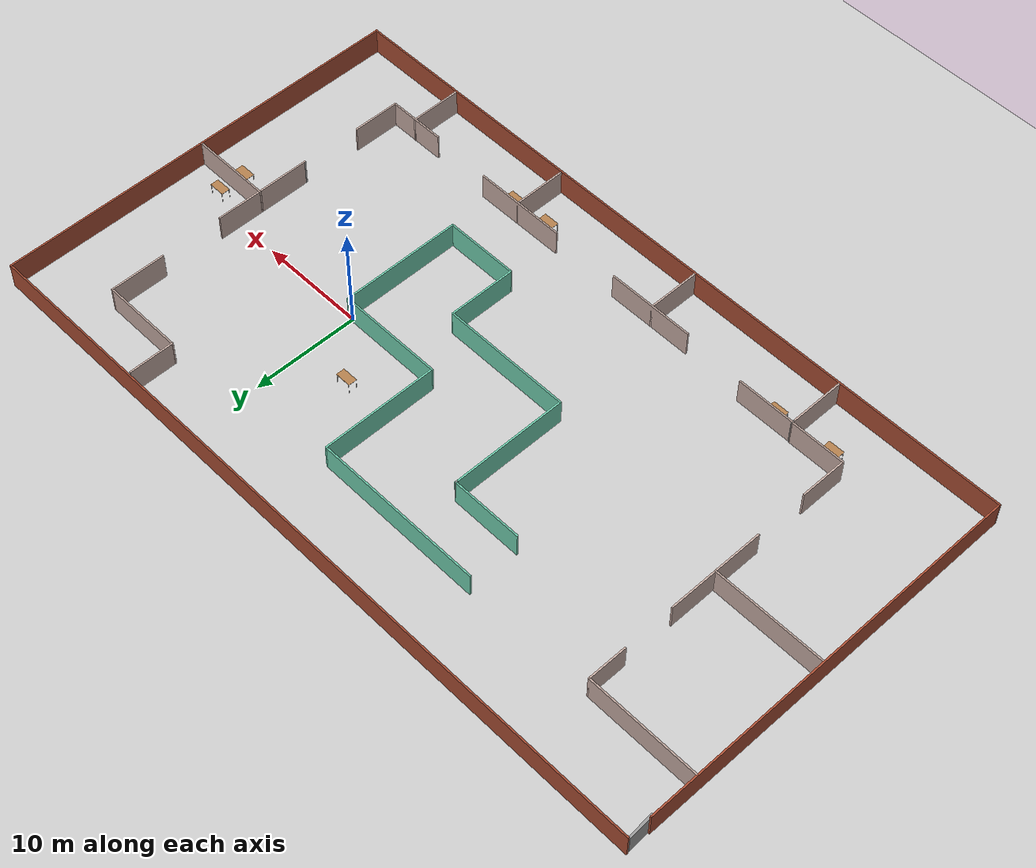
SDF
<sdf version="1.6">
 <world name="default">
  <model name="ground_plane">
   <static>1</static>
   <link name="link">
    <collision name="collision">
     <geometry><plane><normal>0 0 1</normal><size>100 100</size></plane></geometry>
     <surface><friction><ode><mu>100</mu><mu2>50</mu2></ode></friction></surface>
    </collision>
    <visual name="visual">
     <cast_shadows>0</cast_shadows>
     <geometry><plane><normal>0 0 1</normal><size>100 100</size></plane></geometry>
     <material>
      <script><uri>file://media/materials/scripts/gazebo.material</uri><name>Gazebo/Grey</name></script>
     </material>
    </visual>
   </link>
  </model>
  <light name="sun" type="directional">
   <pose>0 0 10 0 -0 0</pose>
   <diffuse>0.8 0.8 0.8 1</diffuse>
   <specular>0.2 0.2 0.2 1</specular>
   <attenuation>
    <range>1000</range>
    <constant>0.9</constant>
    <linear>0.01</linear>
    <quadratic>0.001</quadratic>
   </attenuation>
   <direction>-0.5 0.1 -0.9</direction>
  </light>
  <gravity>0 0 -9.8</gravity>
  <magnetic_field>6e-06 2.3e-05 -4.2e-05</magnetic_field>
  <atmosphere type="adiabatic"/>
  <physics name="default_physics" default="0" type="ode">
   <max_step_size>0.001</max_step_size>
   <real_time_factor>1</real_time_factor>
   <real_time_update_rate>1000</real_time_update_rate>
  </physics>
  <scene><ambient>0.4 0.4 0.4 1</ambient><background>0.7 0.7 0.7 1</background><shadows>1</shadows></scene>
  <spherical_coordinates>
   <surface_model>EARTH_WGS84</surface_model>
   <latitude_deg>0</latitude_deg>
   <longitude_deg>0</longitude_deg>
   <elevation>0</elevation>
   <heading_deg>0</heading_deg>
  </spherical_coordinates>
  <model name="maze_world">
   <pose>-13.1562 -2.2026 0 0 -0 0</pose>
   <link name="Door_0">
    <collision name="Door_0_Collision">
     <geometry><box><size>2.4882 0.2 2</size></box></geometry>
     <pose>0 0 1 0 -0 0</pose>
    </collision>
    <visual name="Door_0_Visual">
     <pose>0 0 1 0 -0 0</pose>
     <geometry><box><size>2.4882 0.2 2</size></box></geometry>
     <material>
      <script><uri>file://media/materials/scripts/gazebo.material</uri><name>Gazebo/Grey</name></script>
     </material>
    </visual>
    <pose>-34.5337 18.2528 0 0 -0 1.62796</pose>
   </link>
   <link name="Wall_0">
    <collision name="Wall_0_Collision">
     <geometry><box><size>69.5 0.15 2.5</size></box></geometry>
     <pose>0 0 1.25 0 -0 0</pose>
    </collision>
    <visual name="Wall_0_Visual">
     <pose>0 0 1.25 0 -0 0</pose>
     <geometry><box><size>69.5 0.15 2.5</size></box></geometry>
     <material>
      <script><uri>file://media/materials/scripts/gazebo.material</uri><name>Gazebo/Bricks</name></script>
      <ambient>1 1 1 1</ambient>
     </material>
     <meta><layer>0</layer></meta>
    </visual>
    <pose>-0.012461 19.6883 0 0 -0 0</pose>
   </link>
   <link name="Wall_1">
    <collision name="Wall_1_Collision">
     <geometry><box><size>39.5 0.15 2.5</size></box></geometry>
     <pose>0 0 1.25 0 -0 0</pose>
    </collision>
    <visual name="Wall_1_Visual">
     <pose>0 0 1.25 0 -0 0</pose>
     <geometry><box><size>39.5 0.15 2.5</size></box></geometry>
     <material>
      <script><uri>file://media/materials/scripts/gazebo.material</uri><name>Gazebo/Bricks</name></script>
      <ambient>1 1 1 1</ambient>
     </material>
     <meta><layer>0</layer></meta>
    </visual>
    <pose>34.6625 0.013279 0 0 0 -1.5708</pose>
   </link>
   <link name="Wall_10">
    <collision name="Wall_10_Collision">
     <geometry><box><size>10.5 0.15 2.5</size></box></geometry>
     <pose>0 0 1.25 0 -0 0</pose>
    </collision>
    <visual name="Wall_10_Visual">
     <pose>0 0 1.25 0 -0 0</pose>
     <geometry><box><size>10.5 0.15 2.5</size></box></geometry>
     <material>
      <script><uri>file://media/materials/scripts/gazebo.material</uri><name>Gazebo/Grey</name></script>
      <ambient>0.760784 0.662745 0.627451 1</ambient>
     </material>
     <meta><layer>0</layer></meta>
    </visual>
    <pose>-29.3673 -0.085359 0 0 -0 3.14159</pose>
   </link>
   <link name="Wall_12">
    <collision name="Wall_12_Collision">
     <geometry><box><size>4.5 0.15 2.5</size></box></geometry>
     <pose>0 0 1.25 0 -0 0</pose>
    </collision>
    <visual name="Wall_12_Visual">
     <pose>0 0 1.25 0 -0 0</pose>
     <geometry><box><size>4.5 0.15 2.5</size></box></geometry>
     <material>
      <script><uri>file://media/materials/scripts/gazebo.material</uri><name>Gazebo/Grey</name></script>
      <ambient>0.760784 0.662745 0.627451 1</ambient>
     </material>
     <meta><layer>0</layer></meta>
    </visual>
    <pose>-24.0987 -11.9923 0 0 0 -1.5708</pose>
   </link>
   <link name="Wall_13">
    <collision name="Wall_13_Collision">
     <geometry><box><size>5.25 0.15 2.5</size></box></geometry>
     <pose>0 0 1.25 0 -0 0</pose>
    </collision>
    <visual name="Wall_13_Visual">
     <pose>0 0 1.25 0 -0 0</pose>
     <geometry><box><size>5.25 0.15 2.5</size></box></geometry>
     <material>
      <script><uri>file://media/materials/scripts/gazebo.material</uri><name>Gazebo/Grey</name></script>
      <ambient>0.760784 0.662745 0.627451 1</ambient>
     </material>
     <meta><layer>0</layer></meta>
    </visual>
    <pose>-21.5487 -14.1673 0 0 -0 0</pose>
   </link>
   <link name="Wall_14">
    <collision name="Wall_14_Collision">
     <geometry><box><size>5.5 0.15 2.5</size></box></geometry>
     <pose>0 0 1.25 0 -0 0</pose>
    </collision>
    <visual name="Wall_14_Visual">
     <pose>0 0 1.25 0 -0 0</pose>
     <geometry><box><size>5.5 0.15 2.5</size></box></geometry>
     <material>
      <script><uri>file://media/materials/scripts/gazebo.material</uri><name>Gazebo/Grey</name></script>
      <ambient>0.760784 0.662745 0.627451 1</ambient>
     </material>
     <meta><layer>0</layer></meta>
    </visual>
    <pose>-18.9987 -16.8423 0 0 0 -1.5708</pose>
   </link>
   <link name="Wall_16">
    <collision name="Wall_16_Collision">
     <geometry><box><size>0.302581 0.15 2.5</size></box></geometry>
     <pose>0 0 1.25 0 -0 0</pose>
    </collision>
    <visual name="Wall_16_Visual">
     <pose>0 0 1.25 0 -0 0</pose>
     <geometry><box><size>0.302581 0.15 2.5</size></box></geometry>
     <material>
      <script><uri>file://media/materials/scripts/gazebo.material</uri><name>Gazebo/Grey</name></script>
      <ambient>1 1 1 1</ambient>
     </material>
     <meta><layer>0</layer></meta>
    </visual>
    <pose>-18.9704 -14.2381 0 0 0 -1.19012</pose>
   </link>
   <link name="Wall_17">
    <collision name="Wall_17_Collision">
     <geometry><box><size>5.5 0.15 2.5</size></box></geometry>
     <pose>0 0 1.25 0 -0 0</pose>
    </collision>
    <visual name="Wall_17_Visual">
     <pose>0 0 1.25 0 -0 0</pose>
     <geometry><box><size>5.5 0.15 2.5</size></box></geometry>
     <material>
      <script><uri>file://media/materials/scripts/gazebo.material</uri><name>Gazebo/Grey</name></script>
      <ambient>0.760784 0.662745 0.627451 1</ambient>
     </material>
     <meta><layer>0</layer></meta>
    </visual>
    <pose>-16.267 -14.2154 0 0 -0 0</pose>
   </link>
   <link name="Wall_19">
    <collision name="Wall_19_Collision">
     <geometry><box><size>8.25 0.15 2.5</size></box></geometry>
     <pose>0 0 1.25 0 -0 0</pose>
    </collision>
    <visual name="Wall_19_Visual">
     <pose>0 0 1.25 0 -0 0</pose>
     <geometry><box><size>8.25 0.15 2.5</size></box></geometry>
     <material>
      <script><uri>file://media/materials/scripts/gazebo.material</uri><name>Gazebo/Grey</name></script>
      <ambient>0.760784 0.662745 0.627451 1</ambient>
     </material>
     <meta><layer>0</layer></meta>
    </visual>
    <pose>-3.48573 -14.6832 0 0 -0 0</pose>
   </link>
   <link name="Wall_2">
    <collision name="Wall_2_Collision">
     <geometry><box><size>69.5 0.15 2.5</size></box></geometry>
     <pose>0 0 1.25 0 -0 0</pose>
    </collision>
    <visual name="Wall_2_Visual">
     <pose>0 0 1.25 0 -0 0</pose>
     <geometry><box><size>69.5 0.15 2.5</size></box></geometry>
     <material>
      <script><uri>file://media/materials/scripts/gazebo.material</uri><name>Gazebo/Bricks</name></script>
      <ambient>1 1 1 1</ambient>
     </material>
     <meta><layer>0</layer></meta>
    </visual>
    <pose>-0.012461 -19.6617 0 0 -0 3.14159</pose>
   </link>
   <link name="Wall_21">
    <collision name="Wall_21_Collision">
     <geometry><box><size>5 0.15 2.5</size></box></geometry>
     <pose>0 0 1.25 0 -0 0</pose>
    </collision>
    <visual name="Wall_21_Visual">
     <pose>0 0 1.25 0 -0 0</pose>
     <geometry><box><size>5 0.15 2.5</size></box></geometry>
     <material>
      <script><uri>file://media/materials/scripts/gazebo.material</uri><name>Gazebo/Grey</name></script>
      <ambient>0.760784 0.662745 0.627451 1</ambient>
     </material>
     <meta><layer>0</layer></meta>
    </visual>
    <pose>-3.69911 -17.1082 0 0 0 -1.5708</pose>
   </link>
   <link name="Wall_23">
    <collision name="Wall_23_Collision">
     <geometry><box><size>8.75 0.15 2.5</size></box></geometry>
     <pose>0 0 1.25 0 -0 0</pose>
    </collision>
    <visual name="Wall_23_Visual">
     <pose>0 0 1.25 0 -0 0</pose>
     <geometry><box><size>8.75 0.15 2.5</size></box></geometry>
     <material>
      <script><uri>file://media/materials/scripts/gazebo.material</uri><name>Gazebo/Grey</name></script>
      <ambient>0.760784 0.662745 0.627451 1</ambient>
     </material>
     <meta><layer>0</layer></meta>
    </visual>
    <pose>11.3622 -14.5897 0 0 -0 0</pose>
   </link>
   <link name="Wall_25">
    <collision name="Wall_25_Collision">
     <geometry><box><size>5 0.15 2.5</size></box></geometry>
     <pose>0 0 1.25 0 -0 0</pose>
    </collision>
    <visual name="Wall_25_Visual">
     <pose>0 0 1.25 0 -0 0</pose>
     <geometry><box><size>5 0.15 2.5</size></box></geometry>
     <material>
      <script><uri>file://media/materials/scripts/gazebo.material</uri><name>Gazebo/Grey</name></script>
      <ambient>0.760784 0.662745 0.627451 1</ambient>
     </material>
     <meta><layer>0</layer></meta>
    </visual>
    <pose>11.5538 -17.0147 0 0 0 -1.5708</pose>
   </link>
   <link name="Wall_27">
    <collision name="Wall_27_Collision">
     <geometry><box><size>5.5 0.15 2.5</size></box></geometry>
     <pose>0 0 1.25 0 -0 0</pose>
    </collision>
    <visual name="Wall_27_Visual">
     <pose>0 0 1.25 0 -0 0</pose>
     <geometry><box><size>5.5 0.15 2.5</size></box></geometry>
     <material>
      <script><uri>file://media/materials/scripts/gazebo.material</uri><name>Gazebo/Grey</name></script>
      <ambient>0.760784 0.662745 0.627451 1</ambient>
     </material>
     <meta><layer>0</layer></meta>
    </visual>
    <pose>24.2415 -14.8704 0 0 -0 0</pose>
   </link>
   <link name="Wall_28">
    <collision name="Wall_28_Collision">
     <geometry><box><size>4.5 0.15 2.5</size></box></geometry>
     <pose>0 0 1.25 0 -0 0</pose>
    </collision>
    <visual name="Wall_28_Visual">
     <pose>0 0 1.25 0 -0 0</pose>
     <geometry><box><size>4.5 0.15 2.5</size></box></geometry>
     <material>
      <script><uri>file://media/materials/scripts/gazebo.material</uri><name>Gazebo/Grey</name></script>
      <ambient>0.760784 0.662745 0.627451 1</ambient>
     </material>
     <meta><layer>0</layer></meta>
    </visual>
    <pose>26.9165 -12.6954 0 0 -0 1.5708</pose>
   </link>
   <link name="Wall_3">
    <collision name="Wall_3_Collision">
     <geometry><box><size>37.25 0.15 2.5</size></box></geometry>
     <pose>0 0 1.25 0 -0 0</pose>
    </collision>
    <visual name="Wall_3_Visual">
     <pose>0 0 1.25 0 -0 0</pose>
     <geometry><box><size>37.25 0.15 2.5</size></box></geometry>
     <material>
      <script><uri>file://media/materials/scripts/gazebo.material</uri><name>Gazebo/Bricks</name></script>
      <ambient>1 1 1 1</ambient>
     </material>
     <meta><layer>0</layer></meta>
    </visual>
    <pose>-34.6875 -1.11172 0 0 -0 1.5708</pose>
   </link>
   <link name="Wall_30">
    <collision name="Wall_30_Collision">
     <geometry><box><size>5 0.15 2.5</size></box></geometry>
     <pose>0 0 1.25 0 -0 0</pose>
    </collision>
    <visual name="Wall_30_Visual">
     <pose>0 0 1.25 0 -0 0</pose>
     <geometry><box><size>5 0.15 2.5</size></box></geometry>
     <material>
      <script><uri>file://media/materials/scripts/gazebo.material</uri><name>Gazebo/Grey</name></script>
      <ambient>0.760784 0.662745 0.627451 1</ambient>
     </material>
     <meta><layer>0</layer></meta>
    </visual>
    <pose>24.3738 -17.2633 0 0 0 -1.5708</pose>
   </link>
   <link name="Wall_32">
    <collision name="Wall_32_Collision">
     <geometry><box><size>0.16 0.15 2.5</size></box></geometry>
     <pose>0 0 1.25 0 -0 0</pose>
    </collision>
    <visual name="Wall_32_Visual">
     <pose>0 0 1.25 0 -0 0</pose>
     <geometry><box><size>0.16 0.15 2.5</size></box></geometry>
     <material>
      <script><uri>file://media/materials/scripts/gazebo.material</uri><name>Gazebo/Grey</name></script>
      <ambient>1 1 1 1</ambient>
     </material>
     <meta><layer>0</layer></meta>
    </visual>
    <pose>27.0925 -4.85775 0 0 -0 0</pose>
   </link>
   <link name="Wall_33">
    <collision name="Wall_33_Collision">
     <geometry><box><size>9.25 0.15 2.5</size></box></geometry>
     <pose>0 0 1.25 0 -0 0</pose>
    </collision>
    <visual name="Wall_33_Visual">
     <pose>0 0 1.25 0 -0 0</pose>
     <geometry><box><size>9.25 0.15 2.5</size></box></geometry>
     <material>
      <script><uri>file://media/materials/scripts/gazebo.material</uri><name>Gazebo/Grey</name></script>
      <ambient>0.760784 0.662745 0.627451 1</ambient>
     </material>
     <meta><layer>0</layer></meta>
    </visual>
    <pose>27.0975 -0.307745 0 0 -0 1.5708</pose>
   </link>
   <link name="Wall_35">
    <collision name="Wall_35_Collision">
     <geometry><box><size>7.75 0.15 2.5</size></box></geometry>
     <pose>0 0 1.25 0 -0 0</pose>
    </collision>
    <visual name="Wall_35_Visual">
     <pose>0 0 1.25 0 -0 0</pose>
     <geometry><box><size>7.75 0.15 2.5</size></box></geometry>
     <material>
      <script><uri>file://media/materials/scripts/gazebo.material</uri><name>Gazebo/Grey</name></script>
      <ambient>0.760784 0.662745 0.627451 1</ambient>
     </material>
     <meta><layer>0</layer></meta>
    </visual>
    <pose>30.8875 0.008218 0 0 -0 0</pose>
   </link>
   <link name="Wall_37">
    <collision name="Wall_37_Collision">
     <geometry><box><size>5.25 0.15 2.5</size></box></geometry>
     <pose>0 0 1.25 0 -0 0</pose>
    </collision>
    <visual name="Wall_37_Visual">
     <pose>0 0 1.25 0 -0 0</pose>
     <geometry><box><size>5.25 0.15 2.5</size></box></geometry>
     <material>
      <script><uri>file://media/materials/scripts/gazebo.material</uri><name>Gazebo/Grey</name></script>
      <ambient>0.760784 0.662745 0.627451 1</ambient>
     </material>
     <meta><layer>0</layer></meta>
    </visual>
    <pose>27.0875 12.758 0 0 -0 1.5708</pose>
   </link>
   <link name="Wall_38">
    <collision name="Wall_38_Collision">
     <geometry><box><size>7.75 0.15 2.5</size></box></geometry>
     <pose>0 0 1.25 0 -0 0</pose>
    </collision>
    <visual name="Wall_38_Visual">
     <pose>0 0 1.25 0 -0 0</pose>
     <geometry><box><size>7.75 0.15 2.5</size></box></geometry>
     <material>
      <script><uri>file://media/materials/scripts/gazebo.material</uri><name>Gazebo/Grey</name></script>
      <ambient>0.760784 0.662745 0.627451 1</ambient>
     </material>
     <meta><layer>0</layer></meta>
    </visual>
    <pose>23.2875 15.308 0 0 -0 3.14159</pose>
   </link>
   <link name="Wall_39">
    <collision name="Wall_39_Collision">
     <geometry><box><size>4.25 0.15 2.5</size></box></geometry>
     <pose>0 0 1.25 0 -0 0</pose>
    </collision>
    <visual name="Wall_39_Visual">
     <pose>0 0 1.25 0 -0 0</pose>
     <geometry><box><size>4.25 0.15 2.5</size></box></geometry>
     <material>
      <script><uri>file://media/materials/scripts/gazebo.material</uri><name>Gazebo/Grey</name></script>
      <ambient>0.760784 0.662745 0.627451 1</ambient>
     </material>
     <meta><layer>0</layer></meta>
    </visual>
    <pose>19.4875 17.358 0 0 -0 1.5708</pose>
   </link>
   <link name="Wall_41">
    <collision name="Wall_41_Collision">
     <geometry><box><size>11 0.15 2.5</size></box></geometry>
     <pose>0 0 1.25 0 -0 0</pose>
    </collision>
    <visual name="Wall_41_Visual">
     <pose>0 0 1.25 0 -0 0</pose>
     <geometry><box><size>11 0.15 2.5</size></box></geometry>
     <material>
      <script><uri>file://media/materials/scripts/gazebo.material</uri><name>Gazebo/Grey</name></script>
      <ambient>0.435294 0.796078 0.67451 1</ambient>
     </material>
     <meta><layer>0</layer></meta>
    </visual>
    <pose>-5.47706 2.72435 0 0 0 -1.5708</pose>
   </link>
   <link name="Wall_42">
    <collision name="Wall_42_Collision">
     <geometry><box><size>12.25 0.15 2.5</size></box></geometry>
     <pose>0 0 1.25 0 -0 0</pose>
    </collision>
    <visual name="Wall_42_Visual">
     <pose>0 0 1.25 0 -0 0</pose>
     <geometry><box><size>12.25 0.15 2.5</size></box></geometry>
     <material>
      <script><uri>file://media/materials/scripts/gazebo.material</uri><name>Gazebo/Grey</name></script>
      <ambient>0.435294 0.796078 0.67451 1</ambient>
     </material>
     <meta><layer>0</layer></meta>
    </visual>
    <pose>0.572942 -2.70065 0 0 -0 0</pose>
   </link>
   <link name="Wall_43">
    <collision name="Wall_43_Collision">
     <geometry><box><size>6.5 0.15 2.5</size></box></geometry>
     <pose>0 0 1.25 0 -0 0</pose>
    </collision>
    <visual name="Wall_43_Visual">
     <pose>0 0 1.25 0 -0 0</pose>
     <geometry><box><size>6.5 0.15 2.5</size></box></geometry>
     <material>
      <script><uri>file://media/materials/scripts/gazebo.material</uri><name>Gazebo/Grey</name></script>
      <ambient>0.435294 0.796078 0.67451 1</ambient>
     </material>
     <meta><layer>0</layer></meta>
    </visual>
    <pose>6.62294 -5.87565 0 0 0 -1.5708</pose>
   </link>
   <link name="Wall_44">
    <collision name="Wall_44_Collision">
     <geometry><box><size>7 0.15 2.5</size></box></geometry>
     <pose>0 0 1.25 0 -0 0</pose>
    </collision>
    <visual name="Wall_44_Visual">
     <pose>0 0 1.25 0 -0 0</pose>
     <geometry><box><size>7 0.15 2.5</size></box></geometry>
     <material>
      <script><uri>file://media/materials/scripts/gazebo.material</uri><name>Gazebo/Grey</name></script>
      <ambient>0.435294 0.796078 0.67451 1</ambient>
     </material>
     <meta><layer>0</layer></meta>
    </visual>
    <pose>10.0479 -9.05065 0 0 -0 0</pose>
   </link>
   <link name="Wall_45">
    <collision name="Wall_45_Collision">
     <geometry><box><size>11.5 0.15 2.5</size></box></geometry>
     <pose>0 0 1.25 0 -0 0</pose>
    </collision>
    <visual name="Wall_45_Visual">
     <pose>0 0 1.25 0 -0 0</pose>
     <geometry><box><size>11.5 0.15 2.5</size></box></geometry>
     <material>
      <script><uri>file://media/materials/scripts/gazebo.material</uri><name>Gazebo/Grey</name></script>
      <ambient>0.435294 0.796078 0.67451 1</ambient>
     </material>
     <meta><layer>0</layer></meta>
    </visual>
    <pose>13.4729 -3.37565 0 0 -0 1.5708</pose>
   </link>
   <link name="Wall_46">
    <collision name="Wall_46_Collision">
     <geometry><box><size>10 0.15 2.5</size></box></geometry>
     <pose>0 0 1.25 0 -0 0</pose>
    </collision>
    <visual name="Wall_46_Visual">
     <pose>0 0 1.25 0 -0 0</pose>
     <geometry><box><size>10 0.15 2.5</size></box></geometry>
     <material>
      <script><uri>file://media/materials/scripts/gazebo.material</uri><name>Gazebo/Grey</name></script>
      <ambient>0.435294 0.796078 0.67451 1</ambient>
     </material>
     <meta><layer>0</layer></meta>
    </visual>
    <pose>8.54794 2.29935 0 0 -0 3.14159</pose>
   </link>
   <link name="Wall_47">
    <collision name="Wall_47_Collision">
     <geometry><box><size>11 0.15 2.5</size></box></geometry>
     <pose>0 0 1.25 0 -0 0</pose>
    </collision>
    <visual name="Wall_47_Visual">
     <pose>0 0 1.25 0 -0 0</pose>
     <geometry><box><size>11 0.15 2.5</size></box></geometry>
     <material>
      <script><uri>file://media/materials/scripts/gazebo.material</uri><name>Gazebo/Grey</name></script>
      <ambient>0.435294 0.796078 0.67451 1</ambient>
     </material>
     <meta><layer>0</layer></meta>
    </visual>
    <pose>3.62294 7.72435 0 0 -0 1.5708</pose>
   </link>
   <link name="Wall_48">
    <collision name="Wall_48_Collision">
     <geometry><box><size>16 0.15 2.5</size></box></geometry>
     <pose>0 0 1.25 0 -0 0</pose>
    </collision>
    <visual name="Wall_48_Visual">
     <pose>0 0 1.25 0 -0 0</pose>
     <geometry><box><size>16 0.15 2.5</size></box></geometry>
     <material>
      <script><uri>file://media/materials/scripts/gazebo.material</uri><name>Gazebo/Grey</name></script>
      <ambient>0.435294 0.796078 0.67451 1</ambient>
     </material>
     <meta><layer>0</layer></meta>
    </visual>
    <pose>-4.30206 13.1493 0 0 -0 3.14159</pose>
   </link>
   <link name="Wall_5">
    <collision name="Wall_5_Collision">
     <geometry><box><size>10.5 0.15 2.5</size></box></geometry>
     <pose>0 0 1.25 0 -0 0</pose>
    </collision>
    <visual name="Wall_5_Visual">
     <pose>0 0 1.25 0 -0 0</pose>
     <geometry><box><size>10.5 0.15 2.5</size></box></geometry>
     <material>
      <script><uri>file://media/materials/scripts/gazebo.material</uri><name>Gazebo/Grey</name></script>
      <ambient>0.760784 0.662745 0.627451 1</ambient>
     </material>
     <meta><layer>0</layer></meta>
    </visual>
    <pose>-29.4043 12.9217 0 0 -0 0</pose>
   </link>
   <link name="Wall_50">
    <collision name="Wall_50_Collision">
     <geometry><box><size>0.244109 0.15 2.5</size></box></geometry>
     <pose>0 0 1.25 0 -0 0</pose>
    </collision>
    <visual name="Wall_50_Visual">
     <pose>0 0 1.25 0 -0 0</pose>
     <geometry><box><size>0.244109 0.15 2.5</size></box></geometry>
     <material>
      <script><uri>file://media/materials/scripts/gazebo.material</uri><name>Gazebo/Grey</name></script>
      <ambient>1 1 1 1</ambient>
     </material>
     <meta><layer>0</layer></meta>
    </visual>
    <pose>-5.47206 8.19614 0 0 -0 1.46434</pose>
   </link>
   <link name="Wall_51">
    <collision name="Wall_51_Collision">
     <geometry><box><size>6.75 0.15 2.5</size></box></geometry>
     <pose>0 0 1.25 0 -0 0</pose>
    </collision>
    <visual name="Wall_51_Visual">
     <pose>0 0 1.25 0 -0 0</pose>
     <geometry><box><size>6.75 0.15 2.5</size></box></geometry>
     <material>
      <script><uri>file://media/materials/scripts/gazebo.material</uri><name>Gazebo/Grey</name></script>
      <ambient>0.435294 0.796078 0.67451 1</ambient>
     </material>
     <meta><layer>0</layer></meta>
    </visual>
    <pose>-8.76706 8.24292 0 0 -0 3.14159</pose>
   </link>
   <link name="Wall_6">
    <collision name="Wall_6_Collision">
     <geometry><box><size>3.75 0.15 2.5</size></box></geometry>
     <pose>0 0 1.25 0 -0 0</pose>
    </collision>
    <visual name="Wall_6_Visual">
     <pose>0 0 1.25 0 -0 0</pose>
     <geometry><box><size>3.75 0.15 2.5</size></box></geometry>
     <material>
      <script><uri>file://media/materials/scripts/gazebo.material</uri><name>Gazebo/Grey</name></script>
      <ambient>0.760784 0.662745 0.627451 1</ambient>
     </material>
     <meta><layer>0</layer></meta>
    </visual>
    <pose>-24.2293 11.1217 0 0 0 -1.5708</pose>
   </link>
   <link name="Wall_8">
    <collision name="Wall_8_Collision">
     <geometry><box><size>9.25 0.15 2.5</size></box></geometry>
     <pose>0 0 1.25 0 -0 0</pose>
    </collision>
    <visual name="Wall_8_Visual">
     <pose>0 0 1.25 0 -0 0</pose>
     <geometry><box><size>9.25 0.15 2.5</size></box></geometry>
     <material>
      <script><uri>file://media/materials/scripts/gazebo.material</uri><name>Gazebo/Grey</name></script>
      <ambient>0.760784 0.662745 0.627451 1</ambient>
     </material>
     <meta><layer>0</layer></meta>
    </visual>
    <pose>-24.1923 -0.143701 0 0 0 -1.5708</pose>
   </link>
   <static>1</static>
  </model>
  <model name="table">
   <static>1</static>
   <link name="link">
    <collision name="surface">
     <pose>0 0 1 0 -0 0</pose>
     <geometry><box><size>1.5 0.8 0.03</size></box></geometry>
     <surface><friction><ode><mu>0.6</mu><mu2>0.6</mu2></ode></friction></surface>
    </collision>
    <visual name="visual1">
     <pose>0 0 1 0 -0 0</pose>
     <geometry><box><size>1.5 0.8 0.03</size></box></geometry>
     <material>
      <script><uri>file://media/materials/scripts/gazebo.material</uri><name>Gazebo/Wood</name></script>
     </material>
    </visual>
    <collision name="front_left_leg">
     <pose>0.68 0.38 0.5 0 -0 0</pose>
     <geometry><cylinder><radius>0.02</radius><length>1</length></cylinder></geometry>
    </collision>
    <visual name="front_left_leg">
     <pose>0.68 0.38 0.5 0 -0 0</pose>
     <geometry><cylinder><radius>0.02</radius><length>1</length></cylinder></geometry>
     <material>
      <script><uri>file://media/materials/scripts/gazebo.material</uri><name>Gazebo/Grey</name></script>
     </material>
    </visual>
    <collision name="front_right_leg">
     <pose>0.68 -0.38 0.5 0 -0 0</pose>
     <geometry><cylinder><radius>0.02</radius><length>1</length></cylinder></geometry>
    </collision>
    <visual name="front_right_leg">
     <pose>0.68 -0.38 0.5 0 -0 0</pose>
     <geometry><cylinder><radius>0.02</radius><length>1</length></cylinder></geometry>
     <material>
      <script><uri>file://media/materials/scripts/gazebo.material</uri><name>Gazebo/Grey</name></script>
     </material>
    </visual>
    <collision name="back_right_leg">
     <pose>-0.68 -0.38 0.5 0 -0 0</pose>
     <geometry><cylinder><radius>0.02</radius><length>1</length></cylinder></geometry>
    </collision>
    <visual name="back_right_leg">
     <pose>-0.68 -0.38 0.5 0 -0 0</pose>
     <geometry><cylinder><radius>0.02</radius><length>1</length></cylinder></geometry>
     <material>
      <script><uri>file://media/materials/scripts/gazebo.material</uri><name>Gazebo/Grey</name></script>
     </material>
    </visual>
    <collision name="back_left_leg">
     <pose>-0.68 0.38 0.5 0 -0 0</pose>
     <geometry><cylinder><radius>0.02</radius><length>1</length></cylinder></geometry>
    </collision>
    <visual name="back_left_leg">
     <pose>-0.68 0.38 0.5 0 -0 0</pose>
     <geometry><cylinder><radius>0.02</radius><length>1</length></cylinder></geometry>
     <material>
      <script><uri>file://media/materials/scripts/gazebo.material</uri><name>Gazebo/Grey</name></script>
     </material>
    </visual>
   </link>
   <pose>-35.4239 -17.6499 0 0 -0 0</pose>
  </model>
  <model name="table_0">
   <static>1</static>
   <link name="link">
    <collision name="surface">
     <pose>0 0 1 0 -0 0</pose>
     <geometry><box><size>1.5 0.8 0.03</size></box></geometry>
     <surface><friction><ode><mu>0.6</mu><mu2>0.6</mu2></ode></friction></surface>
    </collision>
    <visual name="visual1">
     <pose>0 0 1 0 -0 0</pose>
     <geometry><box><size>1.5 0.8 0.03</size></box></geometry>
     <material>
      <script><uri>file://media/materials/scripts/gazebo.material</uri><name>Gazebo/Wood</name></script>
     </material>
    </visual>
    <collision name="front_left_leg">
     <pose>0.68 0.38 0.5 0 -0 0</pose>
     <geometry><cylinder><radius>0.02</radius><length>1</length></cylinder></geometry>
    </collision>
    <visual name="front_left_leg">
     <pose>0.68 0.38 0.5 0 -0 0</pose>
     <geometry><cylinder><radius>0.02</radius><length>1</length></cylinder></geometry>
     <material>
      <script><uri>file://media/materials/scripts/gazebo.material</uri><name>Gazebo/Grey</name></script>
     </material>
    </visual>
    <collision name="front_right_leg">
     <pose>0.68 -0.38 0.5 0 -0 0</pose>
     <geometry><cylinder><radius>0.02</radius><length>1</length></cylinder></geometry>
    </collision>
    <visual name="front_right_leg">
     <pose>0.68 -0.38 0.5 0 -0 0</pose>
     <geometry><cylinder><radius>0.02</radius><length>1</length></cylinder></geometry>
     <material>
      <script><uri>file://media/materials/scripts/gazebo.material</uri><name>Gazebo/Grey</name></script>
     </material>
    </visual>
    <collision name="back_right_leg">
     <pose>-0.68 -0.38 0.5 0 -0 0</pose>
     <geometry><cylinder><radius>0.02</radius><length>1</length></cylinder></geometry>
    </collision>
    <visual name="back_right_leg">
     <pose>-0.68 -0.38 0.5 0 -0 0</pose>
     <geometry><cylinder><radius>0.02</radius><length>1</length></cylinder></geometry>
     <material>
      <script><uri>file://media/materials/scripts/gazebo.material</uri><name>Gazebo/Grey</name></script>
     </material>
    </visual>
    <collision name="back_left_leg">
     <pose>-0.68 0.38 0.5 0 -0 0</pose>
     <geometry><cylinder><radius>0.02</radius><length>1</length></cylinder></geometry>
    </collision>
    <visual name="back_left_leg">
     <pose>-0.68 0.38 0.5 0 -0 0</pose>
     <geometry><cylinder><radius>0.02</radius><length>1</length></cylinder></geometry>
     <material>
      <script><uri>file://media/materials/scripts/gazebo.material</uri><name>Gazebo/Grey</name></script>
     </material>
    </visual>
   </link>
   <pose>-0.141904 -17.9425 0 0 -0 0</pose>
  </model>
  <model name="table_1">
   <static>1</static>
   <link name="link">
    <collision name="surface">
     <pose>0 0 1 0 -0 0</pose>
     <geometry><box><size>1.5 0.8 0.03</size></box></geometry>
     <surface><friction><ode><mu>0.6</mu><mu2>0.6</mu2></ode></friction></surface>
    </collision>
    <visual name="visual1">
     <pose>0 0 1 0 -0 0</pose>
     <geometry><box><size>1.5 0.8 0.03</size></box></geometry>
     <material>
      <script><uri>file://media/materials/scripts/gazebo.material</uri><name>Gazebo/Wood</name></script>
     </material>
    </visual>
    <collision name="front_left_leg">
     <pose>0.68 0.38 0.5 0 -0 0</pose>
     <geometry><cylinder><radius>0.02</radius><length>1</length></cylinder></geometry>
    </collision>
    <visual name="front_left_leg">
     <pose>0.68 0.38 0.5 0 -0 0</pose>
     <geometry><cylinder><radius>0.02</radius><length>1</length></cylinder></geometry>
     <material>
      <script><uri>file://media/materials/scripts/gazebo.material</uri><name>Gazebo/Grey</name></script>
     </material>
    </visual>
    <collision name="front_right_leg">
     <pose>0.68 -0.38 0.5 0 -0 0</pose>
     <geometry><cylinder><radius>0.02</radius><length>1</length></cylinder></geometry>
    </collision>
    <visual name="front_right_leg">
     <pose>0.68 -0.38 0.5 0 -0 0</pose>
     <geometry><cylinder><radius>0.02</radius><length>1</length></cylinder></geometry>
     <material>
      <script><uri>file://media/materials/scripts/gazebo.material</uri><name>Gazebo/Grey</name></script>
     </material>
    </visual>
    <collision name="back_right_leg">
     <pose>-0.68 -0.38 0.5 0 -0 0</pose>
     <geometry><cylinder><radius>0.02</radius><length>1</length></cylinder></geometry>
    </collision>
    <visual name="back_right_leg">
     <pose>-0.68 -0.38 0.5 0 -0 0</pose>
     <geometry><cylinder><radius>0.02</radius><length>1</length></cylinder></geometry>
     <material>
      <script><uri>file://media/materials/scripts/gazebo.material</uri><name>Gazebo/Grey</name></script>
     </material>
    </visual>
    <collision name="back_left_leg">
     <pose>-0.68 0.38 0.5 0 -0 0</pose>
     <geometry><cylinder><radius>0.02</radius><length>1</length></cylinder></geometry>
    </collision>
    <visual name="back_left_leg">
     <pose>-0.68 0.38 0.5 0 -0 0</pose>
     <geometry><cylinder><radius>0.02</radius><length>1</length></cylinder></geometry>
     <material>
      <script><uri>file://media/materials/scripts/gazebo.material</uri><name>Gazebo/Grey</name></script>
     </material>
    </visual>
   </link>
   <pose>-3.8552 -18.122 0 0 -0 0</pose>
  </model>
  <model name="table_2">
   <static>1</static>
   <link name="link">
    <collision name="surface">
     <pose>0 0 1 0 -0 0</pose>
     <geometry><box><size>1.5 0.8 0.03</size></box></geometry>
     <surface><friction><ode><mu>0.6</mu><mu2>0.6</mu2></ode></friction></surface>
    </collision>
    <visual name="visual1">
     <pose>0 0 1 0 -0 0</pose>
     <geometry><box><size>1.5 0.8 0.03</size></box></geometry>
     <material>
      <script><uri>file://media/materials/scripts/gazebo.material</uri><name>Gazebo/Wood</name></script>
     </material>
    </visual>
    <collision name="front_left_leg">
     <pose>0.68 0.38 0.5 0 -0 0</pose>
     <geometry><cylinder><radius>0.02</radius><length>1</length></cylinder></geometry>
    </collision>
    <visual name="front_left_leg">
     <pose>0.68 0.38 0.5 0 -0 0</pose>
     <geometry><cylinder><radius>0.02</radius><length>1</length></cylinder></geometry>
     <material>
      <script><uri>file://media/materials/scripts/gazebo.material</uri><name>Gazebo/Grey</name></script>
     </material>
    </visual>
    <collision name="front_right_leg">
     <pose>0.68 -0.38 0.5 0 -0 0</pose>
     <geometry><cylinder><radius>0.02</radius><length>1</length></cylinder></geometry>
    </collision>
    <visual name="front_right_leg">
     <pose>0.68 -0.38 0.5 0 -0 0</pose>
     <geometry><cylinder><radius>0.02</radius><length>1</length></cylinder></geometry>
     <material>
      <script><uri>file://media/materials/scripts/gazebo.material</uri><name>Gazebo/Grey</name></script>
     </material>
    </visual>
    <collision name="back_right_leg">
     <pose>-0.68 -0.38 0.5 0 -0 0</pose>
     <geometry><cylinder><radius>0.02</radius><length>1</length></cylinder></geometry>
    </collision>
    <visual name="back_right_leg">
     <pose>-0.68 -0.38 0.5 0 -0 0</pose>
     <geometry><cylinder><radius>0.02</radius><length>1</length></cylinder></geometry>
     <material>
      <script><uri>file://media/materials/scripts/gazebo.material</uri><name>Gazebo/Grey</name></script>
     </material>
    </visual>
    <collision name="back_left_leg">
     <pose>-0.68 0.38 0.5 0 -0 0</pose>
     <geometry><cylinder><radius>0.02</radius><length>1</length></cylinder></geometry>
    </collision>
    <visual name="back_left_leg">
     <pose>-0.68 0.38 0.5 0 -0 0</pose>
     <geometry><cylinder><radius>0.02</radius><length>1</length></cylinder></geometry>
     <material>
      <script><uri>file://media/materials/scripts/gazebo.material</uri><name>Gazebo/Grey</name></script>
     </material>
    </visual>
   </link>
   <pose>-29.9703 -17.4002 0 0 -0 0</pose>
  </model>
  <model name="table_3">
   <static>1</static>
   <link name="link">
    <collision name="surface">
     <pose>0 0 1 0 -0 0</pose>
     <geometry><box><size>1.5 0.8 0.03</size></box></geometry>
     <surface><friction><ode><mu>0.6</mu><mu2>0.6</mu2></ode></friction></surface>
    </collision>
    <visual name="visual1">
     <pose>0 0 1 0 -0 0</pose>
     <geometry><box><size>1.5 0.8 0.03</size></box></geometry>
     <material>
      <script><uri>file://media/materials/scripts/gazebo.material</uri><name>Gazebo/Wood</name></script>
     </material>
    </visual>
    <collision name="front_left_leg">
     <pose>0.68 0.38 0.5 0 -0 0</pose>
     <geometry><cylinder><radius>0.02</radius><length>1</length></cylinder></geometry>
    </collision>
    <visual name="front_left_leg">
     <pose>0.68 0.38 0.5 0 -0 0</pose>
     <geometry><cylinder><radius>0.02</radius><length>1</length></cylinder></geometry>
     <material>
      <script><uri>file://media/materials/scripts/gazebo.material</uri><name>Gazebo/Grey</name></script>
     </material>
    </visual>
    <collision name="front_right_leg">
     <pose>0.68 -0.38 0.5 0 -0 0</pose>
     <geometry><cylinder><radius>0.02</radius><length>1</length></cylinder></geometry>
    </collision>
    <visual name="front_right_leg">
     <pose>0.68 -0.38 0.5 0 -0 0</pose>
     <geometry><cylinder><radius>0.02</radius><length>1</length></cylinder></geometry>
     <material>
      <script><uri>file://media/materials/scripts/gazebo.material</uri><name>Gazebo/Grey</name></script>
     </material>
    </visual>
    <collision name="back_right_leg">
     <pose>-0.68 -0.38 0.5 0 -0 0</pose>
     <geometry><cylinder><radius>0.02</radius><length>1</length></cylinder></geometry>
    </collision>
    <visual name="back_right_leg">
     <pose>-0.68 -0.38 0.5 0 -0 0</pose>
     <geometry><cylinder><radius>0.02</radius><length>1</length></cylinder></geometry>
     <material>
      <script><uri>file://media/materials/scripts/gazebo.material</uri><name>Gazebo/Grey</name></script>
     </material>
    </visual>
    <collision name="back_left_leg">
     <pose>-0.68 0.38 0.5 0 -0 0</pose>
     <geometry><cylinder><radius>0.02</radius><length>1</length></cylinder></geometry>
    </collision>
    <visual name="back_left_leg">
     <pose>-0.68 0.38 0.5 0 -0 0</pose>
     <geometry><cylinder><radius>0.02</radius><length>1</length></cylinder></geometry>
     <material>
      <script><uri>file://media/materials/scripts/gazebo.material</uri><name>Gazebo/Grey</name></script>
     </material>
    </visual>
   </link>
   <pose>17.5792 -3.44128 0 0 -0 0</pose>
  </model>
  <model name="table_4">
   <static>1</static>
   <link name="link">
    <collision name="surface">
     <pose>0 0 1 0 -0 0</pose>
     <geometry><box><size>1.5 0.8 0.03</size></box></geometry>
     <surface><friction><ode><mu>0.6</mu><mu2>0.6</mu2></ode></friction></surface>
    </collision>
    <visual name="visual1">
     <pose>0 0 1 0 -0 0</pose>
     <geometry><box><size>1.5 0.8 0.03</size></box></geometry>
     <material>
      <script><uri>file://media/materials/scripts/gazebo.material</uri><name>Gazebo/Wood</name></script>
     </material>
    </visual>
    <collision name="front_left_leg">
     <pose>0.68 0.38 0.5 0 -0 0</pose>
     <geometry><cylinder><radius>0.02</radius><length>1</length></cylinder></geometry>
    </collision>
    <visual name="front_left_leg">
     <pose>0.68 0.38 0.5 0 -0 0</pose>
     <geometry><cylinder><radius>0.02</radius><length>1</length></cylinder></geometry>
     <material>
      <script><uri>file://media/materials/scripts/gazebo.material</uri><name>Gazebo/Grey</name></script>
     </material>
    </visual>
    <collision name="front_right_leg">
     <pose>0.68 -0.38 0.5 0 -0 0</pose>
     <geometry><cylinder><radius>0.02</radius><length>1</length></cylinder></geometry>
    </collision>
    <visual name="front_right_leg">
     <pose>0.68 -0.38 0.5 0 -0 0</pose>
     <geometry><cylinder><radius>0.02</radius><length>1</length></cylinder></geometry>
     <material>
      <script><uri>file://media/materials/scripts/gazebo.material</uri><name>Gazebo/Grey</name></script>
     </material>
    </visual>
    <collision name="back_right_leg">
     <pose>-0.68 -0.38 0.5 0 -0 0</pose>
     <geometry><cylinder><radius>0.02</radius><length>1</length></cylinder></geometry>
    </collision>
    <visual name="back_right_leg">
     <pose>-0.68 -0.38 0.5 0 -0 0</pose>
     <geometry><cylinder><radius>0.02</radius><length>1</length></cylinder></geometry>
     <material>
      <script><uri>file://media/materials/scripts/gazebo.material</uri><name>Gazebo/Grey</name></script>
     </material>
    </visual>
    <collision name="back_left_leg">
     <pose>-0.68 0.38 0.5 0 -0 0</pose>
     <geometry><cylinder><radius>0.02</radius><length>1</length></cylinder></geometry>
    </collision>
    <visual name="back_left_leg">
     <pose>-0.68 0.38 0.5 0 -0 0</pose>
     <geometry><cylinder><radius>0.02</radius><length>1</length></cylinder></geometry>
     <material>
      <script><uri>file://media/materials/scripts/gazebo.material</uri><name>Gazebo/Grey</name></script>
     </material>
    </visual>
   </link>
   <pose>17.7082 -0.903027 0 0 -0 0</pose>
  </model>
  <model name="table_5">
   <static>1</static>
   <link name="link">
    <collision name="surface">
     <pose>0 0 1 0 -0 0</pose>
     <geometry><box><size>1.5 0.8 0.03</size></box></geometry>
     <surface><friction><ode><mu>0.6</mu><mu2>0.6</mu2></ode></friction></surface>
    </collision>
    <visual name="visual1">
     <pose>0 0 1 0 -0 0</pose>
     <geometry><box><size>1.5 0.8 0.03</size></box></geometry>
     <material>
      <script><uri>file://media/materials/scripts/gazebo.material</uri><name>Gazebo/Wood</name></script>
     </material>
    </visual>
    <collision name="front_left_leg">
     <pose>0.68 0.38 0.5 0 -0 0</pose>
     <geometry><cylinder><radius>0.02</radius><length>1</length></cylinder></geometry>
    </collision>
    <visual name="front_left_leg">
     <pose>0.68 0.38 0.5 0 -0 0</pose>
     <geometry><cylinder><radius>0.02</radius><length>1</length></cylinder></geometry>
     <material>
      <script><uri>file://media/materials/scripts/gazebo.material</uri><name>Gazebo/Grey</name></script>
     </material>
    </visual>
    <collision name="front_right_leg">
     <pose>0.68 -0.38 0.5 0 -0 0</pose>
     <geometry><cylinder><radius>0.02</radius><length>1</length></cylinder></geometry>
    </collision>
    <visual name="front_right_leg">
     <pose>0.68 -0.38 0.5 0 -0 0</pose>
     <geometry><cylinder><radius>0.02</radius><length>1</length></cylinder></geometry>
     <material>
      <script><uri>file://media/materials/scripts/gazebo.material</uri><name>Gazebo/Grey</name></script>
     </material>
    </visual>
    <collision name="back_right_leg">
     <pose>-0.68 -0.38 0.5 0 -0 0</pose>
     <geometry><cylinder><radius>0.02</radius><length>1</length></cylinder></geometry>
    </collision>
    <visual name="back_right_leg">
     <pose>-0.68 -0.38 0.5 0 -0 0</pose>
     <geometry><cylinder><radius>0.02</radius><length>1</length></cylinder></geometry>
     <material>
      <script><uri>file://media/materials/scripts/gazebo.material</uri><name>Gazebo/Grey</name></script>
     </material>
    </visual>
    <collision name="back_left_leg">
     <pose>-0.68 0.38 0.5 0 -0 0</pose>
     <geometry><cylinder><radius>0.02</radius><length>1</length></cylinder></geometry>
    </collision>
    <visual name="back_left_leg">
     <pose>-0.68 0.38 0.5 0 -0 0</pose>
     <geometry><cylinder><radius>0.02</radius><length>1</length></cylinder></geometry>
     <material>
      <script><uri>file://media/materials/scripts/gazebo.material</uri><name>Gazebo/Grey</name></script>
     </material>
    </visual>
   </link>
   <pose>-4.63817 4.70444 0 0 -0 0</pose>
  </model>
 </world>
</sdf>
